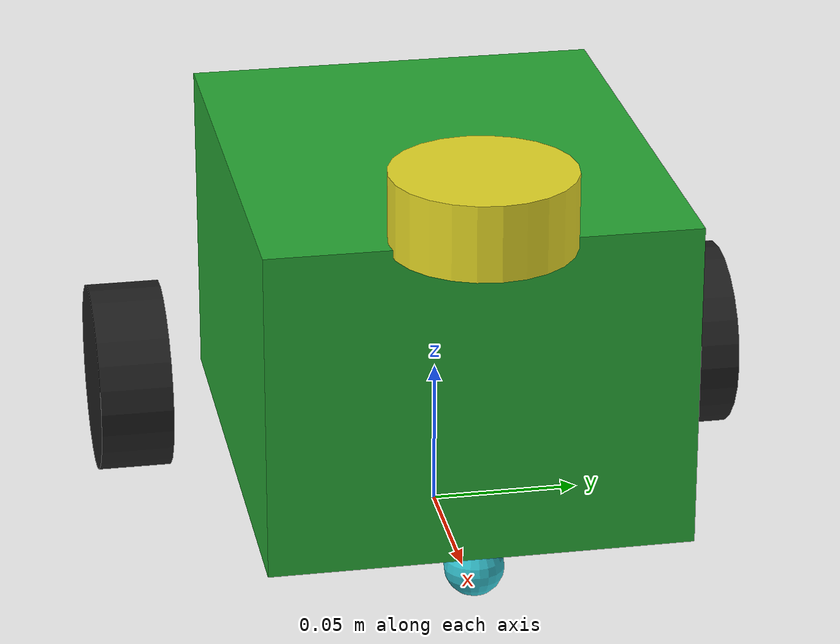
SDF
<sdf version='1.7'>
  <model name='hbot'>
    <link name='base_footprint'>
      <inertial>
        <pose>0.000299 0 0.075 0 -0 0</pose>
        <mass>0.502</mass>
        <inertia>
          <ixx>0.00332928</ixx>
          <ixy>0</ixy>
          <ixz>-6.5e-07</ixz>
          <iyy>0.00372804</iyy>
          <iyz>0</iyz>
          <izz>0.00403209</izz>
        </inertia>
      </inertial>
      <collision name='base_footprint_fixed_joint_lump__base_link_collision'>
        <pose>0 0 0.075 0 -0 0</pose>
        <geometry>
          <box>
            <size>0.17 0.14 0.11</size>
          </box>
        </geometry>
        <surface>
          <contact>
            <ode/>
          </contact>
          <friction>
            <ode/>
          </friction>
        </surface>
      </collision>
      <collision name='base_footprint_fixed_joint_lump__front_caster_collision_1'>
        <pose>0.07 0 0.01 0 -0 0</pose>
        <geometry>
          <sphere>
            <radius>0.01</radius>
          </sphere>
        </geometry>
        <surface>
          <contact>
            <ode>
              <kp>1e+06</kp>
              <kd>1</kd>
            </ode>
          </contact>
          <friction>
            <ode>
              <mu>0.001</mu>
              <mu2>0.001</mu2>
            </ode>
          </friction>
        </surface>
      </collision>
      <collision name='base_footprint_fixed_joint_lump__laser_collision_2'>
        <pose>0.08 0 0.14 0 -0 0</pose>
        <geometry>
          <cylinder>
            <length>0.025</length>
            <radius>0.03</radius>
          </cylinder>
        </geometry>
        <surface>
          <contact>
            <ode/>
          </contact>
          <friction>
            <ode/>
          </friction>
        </surface>
      </collision>
      <visual name='base_footprint_fixed_joint_lump__base_link_visual'>
        <pose>0 0 0.075 0 -0 0</pose>
        <geometry>
          <box>
            <size>0.17 0.14 0.11</size>
          </box>
        </geometry>
        <material>
          <script>
            <name>Gazebo/Green</name>
            <uri>file://media/materials/scripts/gazebo.material</uri>
          </script>
        </material>
      </visual>
      <visual name='base_footprint_fixed_joint_lump__front_caster_visual_1'>
        <pose>0.07 0 0.01 0 -0 0</pose>
        <geometry>
          <sphere>
            <radius>0.01</radius>
          </sphere>
        </geometry>
        <material>
          <script>
            <name>Gazebo/Cyan</name>
            <uri>file://media/materials/scripts/gazebo.material</uri>
          </script>
        </material>
      </visual>
      <visual name='base_footprint_fixed_joint_lump__laser_visual_2'>
        <pose>0.08 0 0.14 0 -0 0</pose>
        <geometry>
          <cylinder>
            <length>0.025</length>
            <radius>0.03</radius>
          </cylinder>
        </geometry>
        <material>
          <script>
            <name>Gazebo/Yellow</name>
            <uri>file://media/materials/scripts/gazebo.material</uri>
          </script>
        </material>
      </visual>
      <sensor name='imu_sensor' type='imu'>
        <always_on>1</always_on>
        <update_rate>200</update_rate>
        <visualize>0</visualize>
        <plugin name='imu_plugin' filename='libgazebo_ros_imu_sensor.so'>
          <ros>
            <remapping>~/out:=imu</remapping>
          </ros>
          <initial_orientation_as_reference>0</initial_orientation_as_reference>
          <frame_name>imu_link</frame_name>
        </plugin>
        <pose>0 0 0 0 -0 0</pose>
      </sensor>
      <sensor name='lidar' type='ray'>
        <always_on>1</always_on>
        <visualize>0</visualize>
        <update_rate>10</update_rate>
        <ray>
          <scan>
            <horizontal>
              <samples>360</samples>
              <resolution>1</resolution>
              <min_angle>-3.14159</min_angle>
              <max_angle>3.14159</max_angle>
            </horizontal>
          </scan>
          <range>
            <min>0.12</min>
            <max>12</max>
            <resolution>0.02</resolution>
          </range>
          <noise>
            <type>gaussian</type>
            <mean>0</mean>
            <stddev>0.01</stddev>
          </noise>
        </ray>
        <plugin name='scan' filename='libgazebo_ros_ray_sensor.so'>
          <ros>
            <remapping>~/out:=scan</remapping>
          </ros>
          <output_type>sensor_msgs/LaserScan</output_type>
          <frame_name>laser</frame_name>
        </plugin>
        <pose>0.08 0 0.14 0 -0 0</pose>
      </sensor>
    </link>
    <joint name='left_wheel_joint' type='revolute'>
      <pose relative_to='base_footprint'>-0.05 0.1 0.0325 0 -0 0</pose>
      <parent>base_footprint</parent>
      <child>left_wheel_link</child>
      <axis>
        <xyz>0 1 0</xyz>
        <limit>
          <lower>-1e+16</lower>
          <upper>1e+16</upper>
        </limit>
        <dynamics>
          <spring_reference>0</spring_reference>
          <spring_stiffness>0</spring_stiffness>
        </dynamics>
      </axis>
    </joint>
    <link name='left_wheel_link'>
      <pose relative_to='left_wheel_joint'>0 0 0 0 -0 0</pose>
      <inertial>
        <pose>0 0 0 0 -0 0</pose>
        <mass>0.1</mass>
        <inertia>
          <ixx>3.16146e-05</ixx>
          <ixy>0</ixy>
          <ixz>0</ixz>
          <iyy>3.16146e-05</iyy>
          <iyz>0</iyz>
          <izz>5.28125e-05</izz>
        </inertia>
      </inertial>
      <collision name='left_wheel_link_collision'>
        <pose>0 0 0 1.5708 -0 0</pose>
        <geometry>
          <cylinder>
            <length>0.025</length>
            <radius>0.0325</radius>
          </cylinder>
        </geometry>
        <surface>
          <contact>
            <ode/>
          </contact>
          <friction>
            <ode/>
          </friction>
        </surface>
      </collision>
      <visual name='left_wheel_link_visual'>
        <pose>0 0 0 1.5708 -0 0</pose>
        <geometry>
          <cylinder>
            <length>0.025</length>
            <radius>0.0325</radius>
          </cylinder>
        </geometry>
        <material>
          <script>
            <name>Gazebo/Black</name>
            <uri>file://media/materials/scripts/gazebo.material</uri>
          </script>
        </material>
      </visual>
    </link>
    <joint name='right_wheel_joint' type='revolute'>
      <pose relative_to='base_footprint'>-0.05 -0.1 0.0325 0 -0 0</pose>
      <parent>base_footprint</parent>
      <child>right_wheel_link</child>
      <axis>
        <xyz>0 1 0</xyz>
        <limit>
          <lower>-1e+16</lower>
          <upper>1e+16</upper>
        </limit>
        <dynamics>
          <spring_reference>0</spring_reference>
          <spring_stiffness>0</spring_stiffness>
        </dynamics>
      </axis>
    </joint>
    <link name='right_wheel_link'>
      <pose relative_to='right_wheel_joint'>0 0 0 0 -0 0</pose>
      <inertial>
        <pose>0 0 0 0 -0 0</pose>
        <mass>0.1</mass>
        <inertia>
          <ixx>3.16146e-05</ixx>
          <ixy>0</ixy>
          <ixz>0</ixz>
          <iyy>3.16146e-05</iyy>
          <iyz>0</iyz>
          <izz>5.28125e-05</izz>
        </inertia>
      </inertial>
      <collision name='right_wheel_link_collision'>
        <pose>0 0 0 1.5708 -0 0</pose>
        <geometry>
          <cylinder>
            <length>0.025</length>
            <radius>0.0325</radius>
          </cylinder>
        </geometry>
        <surface>
          <contact>
            <ode/>
          </contact>
          <friction>
            <ode/>
          </friction>
        </surface>
      </collision>
      <visual name='right_wheel_link_visual'>
        <pose>0 0 0 1.5708 -0 0</pose>
        <geometry>
          <cylinder>
            <length>0.025</length>
            <radius>0.0325</radius>
          </cylinder>
        </geometry>
        <material>
          <script>
            <name>Gazebo/Black</name>
            <uri>file://media/materials/scripts/gazebo.material</uri>
          </script>
        </material>
      </visual>
    </link>
    <static>0</static>
    <plugin name='two_front_wheeled_diff_drive' filename='libgazebo_ros_diff_drive.so'>
      <update_rate>30</update_rate>
      <left_joint>left_wheel_joint</left_joint>
      <right_joint>right_wheel_joint</right_joint>
      <wheel_separation>0.2</wheel_separation>
      <wheel_diameter>0.065</wheel_diameter>
      <max_wheel_torque>20</max_wheel_torque>
      <max_wheel_acceleration>1.0</max_wheel_acceleration>
      <command_topic>cmd_vel</command_topic>
      <publish_odom>1</publish_odom>
      <publish_odom_tf>1</publish_odom_tf>
      <publish_wheel_tf>1</publish_wheel_tf>
      <odometry_topic>odom</odometry_topic>
      <odometry_frame>odom</odometry_frame>
      <robot_base_frame>base_footprint</robot_base_frame>
      <odometry_source>1</odometry_source>
    </plugin>
  </model>
</sdf>
